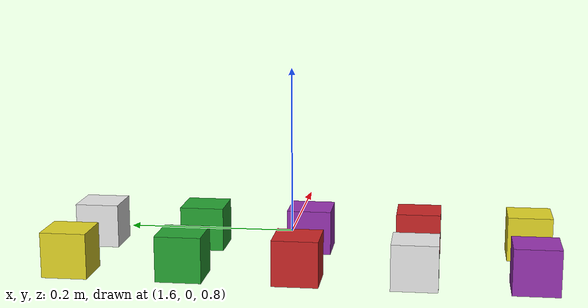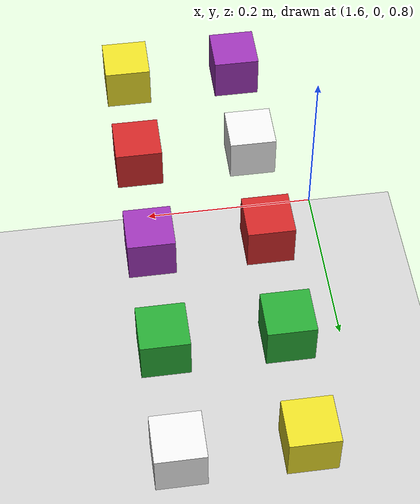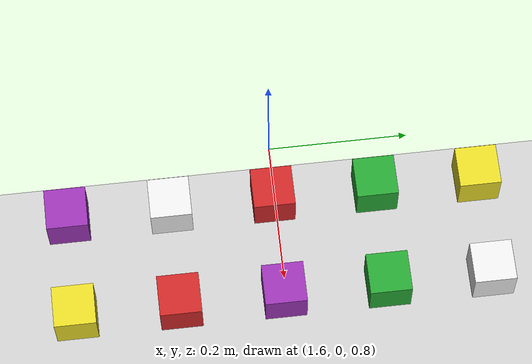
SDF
<sdf version="1.4">
 <world name="default">
  <scene><ambient>0.0 0.0 0.0 1.0</ambient><shadows>0</shadows></scene>
  <include><uri>model://ground_plane</uri></include>
  <include><uri>model://sun</uri></include>
  <include><uri>model://demo_cube_red</uri><name>cube_1</name><pose>1.65 -0.0 0.75 0 0 0</pose></include>
  <include><uri>model://demo_cube_green</uri><name>cube_2</name><pose>1.65 0.15 0.75 0 0 0</pose></include>
  <include><uri>model://demo_cube_white</uri><name>cube_3</name><pose>1.65 -0.15 0.75 0 0 0</pose></include>
  <include><uri>model://demo_cube_red</uri><name>cube_4</name><pose>1.8 -0.15 0.75 0 0 0</pose></include>
  <include><uri>model://demo_cube_purple</uri><name>cube_5</name><pose>1.8 0.0 0.75 0 0 0</pose></include>
  <include><uri>model://demo_cube_green</uri><name>cube_6</name><pose>1.8 0.15 0.75 0 0 0</pose></include>
  <include><uri>model://demo_cube_yellow</uri><name>cube_7</name><pose>1.8 -0.30 0.75 0 0 0</pose></include>
  <include><uri>model://demo_cube_white</uri><name>cube_8</name><pose>1.8 0.30 0.75 0 0 0</pose></include>
  <include><uri>model://demo_cube_yellow</uri><name>cube_9</name><pose>1.65 0.30 0.75 0 0 0</pose></include>
  <include><uri>model://demo_cube_purple</uri><name>cube_10</name><pose>1.65 -0.30 0.75 0 0 0</pose></include>
  <light name="user_point_light_0" type="point">
   <pose>-6.41259 1.369695 1 0 -0 0</pose>
   <diffuse>0.25 0.25 0.25 1</diffuse>
   <specular>0.1 0.1 0.1 1</specular>
   <attenuation>
    <range>85</range>
    <constant>0.5</constant>
    <linear>0.01</linear>
    <quadratic>0.001</quadratic>
   </attenuation>
   <cast_shadows>0</cast_shadows>
   <direction>0 0 -1</direction>
  </light>
  <light name="user_point_light_1" type="point">
   <pose>6.41259 1.369695 1 0 -0 0</pose>
   <diffuse>0.25 0.25 0.25 1</diffuse>
   <specular>0.1 0.1 0.1 1</specular>
   <attenuation>
    <range>85</range>
    <constant>0.5</constant>
    <linear>0.01</linear>
    <quadratic>0.001</quadratic>
   </attenuation>
   <cast_shadows>0</cast_shadows>
   <direction>0 0 -1</direction>
  </light>
  <light name="user_point_light_2" type="point">
   <pose>1.369695 6.41259 1 0 -0 0</pose>
   <diffuse>0.25 0.25 0.25 1</diffuse>
   <specular>0.1 0.1 0.1 1</specular>
   <attenuation>
    <range>85</range>
    <constant>0.5</constant>
    <linear>0.01</linear>
    <quadratic>0.001</quadratic>
   </attenuation>
   <cast_shadows>0</cast_shadows>
   <direction>0 0 -1</direction>
  </light>
  <light name="user_point_light_3" type="point">
   <pose>1.369695 -6.41259 1 0 -0 0</pose>
   <diffuse>0.25 0.25 0.25 1</diffuse>
   <specular>0.1 0.1 0.1 1</specular>
   <attenuation>
    <range>85</range>
    <constant>0.5</constant>
    <linear>0.01</linear>
    <quadratic>0.001</quadratic>
   </attenuation>
   <cast_shadows>0</cast_shadows>
   <direction>0 0 -1</direction>
  </light>
 </world>
</sdf>

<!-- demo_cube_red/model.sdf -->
<sdf version='1.4'>
  <model name="demo_cube_red">
      <static>0</static>
      <link name='link'>
        <inertial>
          <mass>0.25</mass>
          <inertia>
            <ixx>0.001</ixx>
            <ixy>0.000000</ixy>
            <ixz>0.000000</ixz>
            <iyy>0.001</iyy>
            <iyz>0.000000</iyz>
            <izz>0.001</izz>
          </inertia>
        </inertial>
        <collision name='collision'>
          <geometry>
            <box>
              <size>0.060 0.060 0.060</size>
            </box>
          </geometry>
          <surface>
            <friction>
              <ode>
                <mu>100.0</mu>
                <mu2>100.0</mu2>
              </ode>
            </friction>
            <contact>
              <ode>
                <kp>1000000.0</kp>
                <kd>100.0</kd>
                <max_vel>1.0</max_vel>
                <min_depth>0.002</min_depth>
              </ode>
            </contact>
          </surface>
        </collision>
        <visual name='visual'>
          <geometry>
            <box>
              <size>0.060 0.060 0.060</size>
            </box>
          </geometry>
          <material>
            <script>
              <uri>file://media/materials/scripts/gazebo.material</uri>
              <name>Gazebo/Red</name>
            </script>
          </material>
        </visual>
        <velocity_decay>
          <linear>0.000000</linear>
          <angular>0.000000</angular>
        </velocity_decay>
        <self_collide>0</self_collide>
        <kinematic>0</kinematic>
        <gravity>1</gravity>
      </link>
  </model>
</sdf>

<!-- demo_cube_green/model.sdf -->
<sdf version='1.4'>
  <model name="demo_cube_green">
      <static>0</static>
      <link name='link'>
        <inertial>
          <mass>0.25</mass>
          <inertia>
            <ixx>0.001</ixx>
            <ixy>0.000000</ixy>
            <ixz>0.000000</ixz>
            <iyy>0.001</iyy>
            <iyz>0.000000</iyz>
            <izz>0.001</izz>
          </inertia>
        </inertial>
        <collision name='collision'>
          <geometry>
            <box>
              <size>0.060 0.060 0.060</size>
            </box>
          </geometry>
          <surface>
            <friction>
              <ode>
                <mu>100.0</mu>
                <mu2>100.0</mu2>
              </ode>
            </friction>
            <contact>
              <ode>
                <kp>1000000.0</kp>
                <kd>100.0</kd>
                <max_vel>1.0</max_vel>
                <min_depth>0.002</min_depth>
              </ode>
            </contact>
          </surface>
        </collision>
        <visual name='visual'>
          <geometry>
            <box>
              <size>0.060 0.060 0.060</size>
            </box>
          </geometry>
          <material>
            <script>
              <uri>file://media/materials/scripts/gazebo.material</uri>
              <name>Gazebo/Green</name>
            </script>
          </material>
        </visual>
        <velocity_decay>
          <linear>0.000000</linear>
          <angular>0.000000</angular>
        </velocity_decay>
        <self_collide>0</self_collide>
        <kinematic>0</kinematic>
        <gravity>1</gravity>
      </link>
  </model>
</sdf>

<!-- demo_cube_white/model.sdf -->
<sdf version='1.4'>
  <model name="demo_cube_white">
      <static>0</static>
      <link name='link'>
        <inertial>
          <mass>0.25</mass>
          <inertia>
            <ixx>0.001</ixx>
            <ixy>0.000000</ixy>
            <ixz>0.000000</ixz>
            <iyy>0.001</iyy>
            <iyz>0.000000</iyz>
            <izz>0.001</izz>
          </inertia>
        </inertial>
        <collision name='collision'>
          <geometry>
            <box>
              <size>0.060 0.060 0.060</size>
            </box>
          </geometry>
          <surface>
            <friction>
              <ode>
                <mu>30.0</mu>
                <mu2>30.0</mu2>
              </ode>
            </friction>
            <contact>
              <ode>
                <kp>1000000.0</kp>
                <kd>100.0</kd>
                <max_vel>1.0</max_vel>
                <min_depth>0.002</min_depth>
              </ode>
            </contact>
          </surface>
        </collision>
        <visual name='visual'>
          <geometry>
            <box>
              <size>0.060 0.060 0.060</size>
            </box>
          </geometry>
          <material>
            <script>
              <uri>file://media/materials/scripts/gazebo.material</uri>
              <name>Gazebo/White</name>
            </script>
          </material>
        </visual>
        <velocity_decay>
          <linear>0.000000</linear>
          <angular>0.000000</angular>
        </velocity_decay>
        <self_collide>0</self_collide>
        <kinematic>0</kinematic>
        <gravity>1</gravity>
      </link>
  </model>
</sdf>

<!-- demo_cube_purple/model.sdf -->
<sdf version='1.4'>
  <model name="demo_cube_purple">
      <static>0</static>
      <link name='link'>
        <inertial>
          <mass>0.25</mass>
          <inertia>
            <ixx>0.001</ixx>
            <ixy>0.000000</ixy>
            <ixz>0.000000</ixz>
            <iyy>0.001</iyy>
            <iyz>0.000000</iyz>
            <izz>0.001</izz>
          </inertia>
        </inertial>
        <collision name='collision'>
          <geometry>
            <box>
              <size>0.060 0.060 0.060</size>
            </box>
          </geometry>
          <surface>
            <friction>
              <ode>
                <mu>100.0</mu>
                <mu2>100.0</mu2>
              </ode>
            </friction>
            <contact>
              <ode>
                <kp>1000000.0</kp>
                <kd>100.0</kd>
                <max_vel>1.0</max_vel>
                <min_depth>0.002</min_depth>
              </ode>
            </contact>
          </surface>
        </collision>
        <visual name='visual'>
          <geometry>
            <box>
              <size>0.060 0.060 0.060</size>
            </box>
          </geometry>
          <material>
            <script>
              <uri>file://media/materials/scripts/gazebo.material</uri>
              <name>Gazebo/Purple</name>
            </script>
          </material>
        </visual>
        <velocity_decay>
          <linear>0.000000</linear>
          <angular>0.000000</angular>
        </velocity_decay>
        <self_collide>0</self_collide>
        <kinematic>0</kinematic>
        <gravity>1</gravity>
      </link>
  </model>
</sdf>

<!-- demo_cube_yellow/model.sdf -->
<sdf version='1.4'>
  <model name="demo_cube_yellow">
      <static>0</static>
      <link name='link'>
        <inertial>
          <mass>0.25</mass>
          <inertia>
            <ixx>0.001</ixx>
            <ixy>0.000000</ixy>
            <ixz>0.000000</ixz>
            <iyy>0.001</iyy>
            <iyz>0.000000</iyz>
            <izz>0.001</izz>
          </inertia>
        </inertial>
        <collision name='collision'>
          <geometry>
            <box>
              <size>0.060 0.060 0.060</size>
            </box>
          </geometry>
          <surface>
            <friction>
              <ode>
                <mu>100.0</mu>
                <mu2>100.0</mu2>
              </ode>
            </friction>
            <contact>
              <ode>
                <kp>1000000.0</kp>
                <kd>100.0</kd>
                <max_vel>1.0</max_vel>
                <min_depth>0.002</min_depth>
              </ode>
            </contact>
          </surface>
        </collision>
        <visual name='visual'>
          <geometry>
            <box>
              <size>0.060 0.060 0.060</size>
            </box>
          </geometry>
          <material>
            <script>
              <uri>file://media/materials/scripts/gazebo.material</uri>
              <name>Gazebo/Yellow</name>
            </script>
          </material>
        </visual>
        <velocity_decay>
          <linear>0.000000</linear>
          <angular>0.000000</angular>
        </velocity_decay>
        <self_collide>0</self_collide>
        <kinematic>0</kinematic>
        <gravity>1</gravity>
      </link>
  </model>
</sdf>
